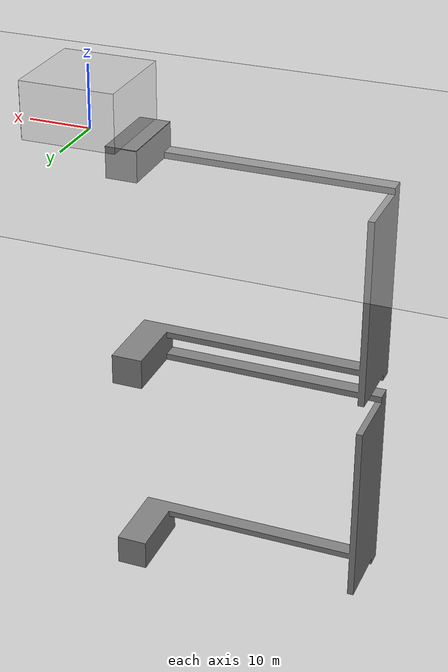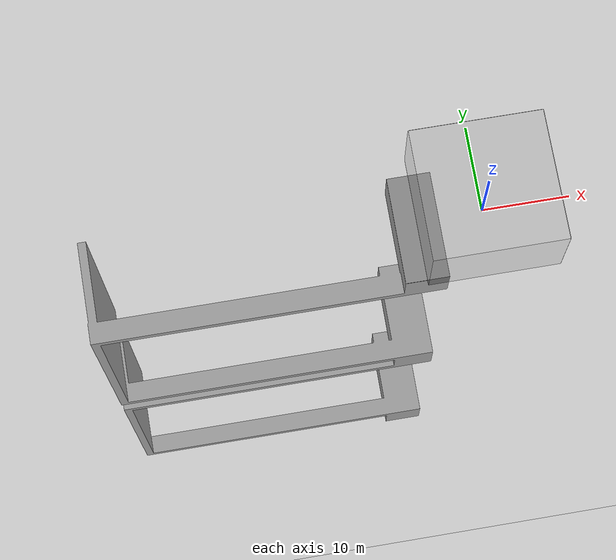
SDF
<?xml version="1.0" ?>
<sdf version="1.8">
  <world name="default">
    <!-- Basic settings and plugins -->
        <physics name="1ms" type="ignored">
            <max_step_size>0.001</max_step_size>
            <real_time_factor>1.0</real_time_factor>

        </physics>
        <plugin
        filename="gz-sim-buoyancy-system"
        name="gz::sim::systems::Buoyancy">
        <uniform_fluid_density>0</uniform_fluid_density>
        </plugin>

        <plugin
            filename="gz-sim-physics-system"
            name="gz::sim::systems::Physics">
        </plugin>
        <plugin
            filename="gz-sim-user-commands-system"
            name="gz::sim::systems::UserCommands">
        </plugin>
        <plugin
            filename="gz-sim-scene-broadcaster-system"
            name="gz::sim::systems::SceneBroadcaster">
        </plugin>
        <plugin
            filename="gz-sim-imu-system"
            name="gz::sim::systems::Imu">
        </plugin>
        <plugin
            filename="gz-sim-sensors-system"
            name="gz::sim::systems::Sensors">
            <render_engine>ogre2</render_engine>
        </plugin>

        <plugin
            filename="gz-sim-buoyancy-system"
            name="gz::sim::systems::Buoyancy">
            <uniform_fluid_density>0</uniform_fluid_density>
        </plugin>
          <plugin
            filename="gz-sim-particle-emitter-system"
            name="gz::sim::systems::ParticleEmitter">
          </plugin>

        <plugin
            filename="gz-sim-contact-system"
            name="gz::sim::systems::Contact">
        </plugin>

        <gui fullscreen="0">

          <!-- 3D scene -->
          <plugin filename="MinimalScene" name="3D View">
            <gz-gui>
              <title>3D View</title>
              <property type="bool" key="showTitleBar">false</property>
              <property type="string" key="state">docked</property>
            </gz-gui>

            <engine>ogre2</engine>
            <scene>scene</scene>
            <ambient_light>0.4 0.4 0.4</ambient_light>
            <background_color>0.8 0.8 0.8</background_color>
            <camera_pose>-6 0 6 0 0.5 0</camera_pose>
            <camera_clip>
              <near>0.25</near>
              <far>25000</far>
            </camera_clip>
          </plugin>

          <!-- Plugins that add functionality to the scene -->
          <plugin filename="EntityContextMenuPlugin" name="Entity context menu">
            <gz-gui>
              <property key="state" type="string">floating</property>
              <property key="width" type="double">5</property>
              <property key="height" type="double">5</property>
              <property key="showTitleBar" type="bool">false</property>
            </gz-gui>
          </plugin>
          <plugin filename="GzSceneManager" name="Scene Manager">
            <gz-gui>
              <property key="resizable" type="bool">false</property>
              <property key="width" type="double">5</property>
              <property key="height" type="double">5</property>
              <property key="state" type="string">floating</property>
              <property key="showTitleBar" type="bool">false</property>
            </gz-gui>
          </plugin>
          <plugin filename="InteractiveViewControl" name="Interactive view control">
            <gz-gui>
              <property key="resizable" type="bool">false</property>
              <property key="width" type="double">5</property>
              <property key="height" type="double">5</property>
              <property key="state" type="string">floating</property>
              <property key="showTitleBar" type="bool">false</property>
            </gz-gui>
          </plugin>
          <plugin filename="CameraTracking" name="Camera Tracking">
            <gz-gui>
              <property key="resizable" type="bool">false</property>
              <property key="width" type="double">5</property>
              <property key="height" type="double">5</property>
              <property key="state" type="string">floating</property>
              <property key="showTitleBar" type="bool">false</property>
            </gz-gui>
          </plugin>
          <plugin filename="MarkerManager" name="Marker manager">
            <gz-gui>
              <property key="resizable" type="bool">false</property>
              <property key="width" type="double">5</property>
              <property key="height" type="double">5</property>
              <property key="state" type="string">floating</property>
              <property key="showTitleBar" type="bool">false</property>
            </gz-gui>
          </plugin>
          <plugin filename="SelectEntities" name="Select Entities">
            <gz-gui>
              <anchors target="Select entities">
                <line own="right" target="right"/>
                <line own="top" target="top"/>
              </anchors>
              <property key="resizable" type="bool">false</property>
              <property key="width" type="double">5</property>
              <property key="height" type="double">5</property>
              <property key="state" type="string">floating</property>
              <property key="showTitleBar" type="bool">false</property>
            </gz-gui>
          </plugin>
          <plugin filename="VisualizationCapabilities" name="Visualization Capabilities">
            <gz-gui>
              <property key="resizable" type="bool">false</property>
              <property key="width" type="double">5</property>
              <property key="height" type="double">5</property>
              <property key="state" type="string">floating</property>
              <property key="showTitleBar" type="bool">false</property>
            </gz-gui>
          </plugin>

          <plugin filename="Spawn" name="Spawn Entities">
            <gz-gui>
              <anchors target="Select entities">
                <line own="right" target="right"/>
                <line own="top" target="top"/>
              </anchors>
              <property key="resizable" type="bool">false</property>
              <property key="width" type="double">5</property>
              <property key="height" type="double">5</property>
              <property key="state" type="string">floating</property>
              <property key="showTitleBar" type="bool">false</property>
            </gz-gui>
          </plugin>

          <!-- World control -->
          <plugin filename="WorldControl" name="World control">
            <gz-gui>
              <title>World control</title>
              <property type="bool" key="showTitleBar">false</property>
              <property type="bool" key="resizable">false</property>
              <property type="double" key="height">72</property>
              <property type="double" key="width">121</property>
              <property type="double" key="z">1</property>

              <property type="string" key="state">floating</property>
              <anchors target="3D View">
                <line own="left" target="left"/>
                <line own="bottom" target="bottom"/>
              </anchors>
            </gz-gui>

            <play_pause>true</play_pause>
            <step>true</step>
            <start_paused>true</start_paused>
            <use_event>true</use_event>

          </plugin>

          <!-- World statistics -->
          <plugin filename="WorldStats" name="World stats">
            <gz-gui>
              <title>World stats</title>
              <property type="bool" key="showTitleBar">false</property>
              <property type="bool" key="resizable">false</property>
              <property type="double" key="height">110</property>
              <property type="double" key="width">290</property>
              <property type="double" key="z">1</property>

              <property type="string" key="state">floating</property>
              <anchors target="3D View">
                <line own="right" target="right"/>
                <line own="bottom" target="bottom"/>
              </anchors>
            </gz-gui>

            <sim_time>true</sim_time>
            <real_time>true</real_time>
            <real_time_factor>true</real_time_factor>
            <iterations>true</iterations>
          </plugin>

          <!-- Insert simple shapes -->
          <plugin filename="Shapes" name="Shapes">
            <gz-gui>
              <property key="resizable" type="bool">false</property>
              <property key="x" type="double">0</property>
              <property key="y" type="double">0</property>
              <property key="width" type="double">250</property>
              <property key="height" type="double">50</property>
              <property key="state" type="string">floating</property>
              <property key="showTitleBar" type="bool">false</property>
              <property key="cardBackground" type="string">#666666</property>
            </gz-gui>
          </plugin>

          <!-- Insert lights -->
          <plugin filename="Lights" name="Lights">
            <gz-gui>
              <property key="resizable" type="bool">false</property>
              <property key="x" type="double">250</property>
              <property key="y" type="double">0</property>
              <property key="width" type="double">150</property>
              <property key="height" type="double">50</property>
              <property key="state" type="string">floating</property>
              <property key="showTitleBar" type="bool">false</property>
              <property key="cardBackground" type="string">#666666</property>
            </gz-gui>
          </plugin>

          <!-- Translate / rotate -->
          <plugin filename="TransformControl" name="Transform control">
            <gz-gui>
              <property key="resizable" type="bool">false</property>
              <property key="x" type="double">0</property>
              <property key="y" type="double">50</property>
              <property key="width" type="double">250</property>
              <property key="height" type="double">50</property>
              <property key="state" type="string">floating</property>
              <property key="showTitleBar" type="bool">false</property>
              <property key="cardBackground" type="string">#777777</property>
            </gz-gui>
          </plugin>

          <!-- Inspector -->
          <plugin filename="ComponentInspector" name="Component inspector">
            <gz-gui>
              <property type="string" key="state">docked_collapsed</property>
            </gz-gui>
          </plugin>

          <!-- View angle -->
          <plugin filename="ViewAngle" name="View angle">
            <gz-gui>
              <property type="string" key="state">docked_collapsed</property>
            </gz-gui>
          </plugin>

            <!-- KeyPublisher plugin-->
            <plugin filename="KeyPublisher" name="Key Publisher"/>

        </gui>

        <!-- Lighting -->
        <light type="directional" name="sun">
            <cast_shadows>true</cast_shadows>
            <pose>0 0 10 0 0 0</pose>
            <diffuse>0.8 0.8 0.8 1</diffuse>
            <specular>0.2 0.2 0.2 1</specular>
            <attenuation>
                <range>1000</range>
                <constant>0.9</constant>
                <linear>0.01</linear>
                <quadratic>0.001</quadratic>
            </attenuation>
            <direction>-0.5 0.1 -0.9</direction>
        </light>

        <!-- Ground Plane -->
        <model name="ground_plane">
            <static>true</static>
            <link name="link">
                <collision name="collision">
                <geometry>
                    <plane>
                    <normal>0 0 1</normal>
                    </plane>
                </geometry>
                </collision>
                <visual name="visual">
                <geometry>
                    <plane>
                    <normal>0 0 1</normal>
                    <size>100 100</size>
                    </plane>
                </geometry>
                <material>
                    <ambient>0.8 0.8 0.8 1</ambient>
                    <diffuse>0.8 0.8 0.8 1</diffuse>
                    <specular>0.8 0.8 0.8 1</specular>
                </material>
                </visual>
            </link>
        </model>

        <!--WORLD BOUNDARIES-->

        <model name='boundary1'>
            <pose>0 7.5 1.5 0 0 0</pose> <!-- Top wall -->
            <static>true</static>
            <link name='body'>
                <visual name='body_visual'>
                <geometry>
                    <box>
                    <size>15 0.1 15</size> <!-- No change in size -->
                    </box>
                </geometry>
                <material>
                    <ambient>1 0.9 0.9 0.2</ambient>
                    <diffuse>0.5 0.5 0.5 0.2</diffuse>
                </material>
                </visual>
                <collision name='body_collision'>
                <geometry>
                    <box>
                    <size>15 0.1 4</size> <!-- Ensure the size matches the visual -->
                    </box>
                </geometry>
                </collision>
            </link>
            </model>
        <model name='boundary2'>
            <pose>0 -7.5 1.5 0 0 0</pose> <!-- Bottom wall -->
            <static>true</static>
            <link name='body'>
                <visual name='body_visual'>
                <geometry>
                    <box>
                    <size>15 0.1 15</size> <!-- No change in size -->
                    </box>
                </geometry>
                <material>
                    <ambient>1 0.9 0.9 0.2</ambient>
                    <diffuse>0.5 0.5 0.5 0.2</diffuse>
                </material>
                </visual>
                <collision name='body_collision'>
                <geometry>
                    <box>
                    <size>15 0.1 4</size> <!-- Ensure the size matches the visual -->
                    </box>
                </geometry>
                </collision>
            </link>
        </model>
        <model name='boundary3'>
            <pose>7.5 0 1.5 0 0 0</pose> <!-- Right wall (move further right) -->
            <static>true</static>
            <link name='body'>
                <visual name='body_visual'>
                <geometry>
                    <box>
                    <size>0.1 15 15</size>
                    </box>
                </geometry>
                <material>
                    <ambient>1 0.9 0.9 0.2</ambient>
                    <diffuse>0.5 0.5 0.5 0.2</diffuse>
                </material>
                </visual>
                <collision name='body_collision'>
                <geometry>
                    <box>
                    <size>0.1 10 4</size>
                    </box>
                </geometry>
                </collision>
            </link>
            </model>
        <model name='boundary4'>
            <pose>-7.5 0 1.5 0 0 0</pose> <!-- Left wall (move further left) -->
            <static>true</static>
            <link name='body'>
                <visual name='body_visual'>
                <geometry>
                    <box>
                    <size>0.1 15 15</size>
                    </box>
                </geometry>
                <material>
                    <ambient>1 0.9 0.9 0.2</ambient>
                    <diffuse>0.5 0.5 0.5 0.2</diffuse>
                </material>
                </visual>
                <collision name='body_collision'>
                <geometry>
                    <box>
                    <size>0.1 10 4</size>
                    </box>
                </geometry>
                </collision>
            </link>
        </model>

        <model name='ceiling'>
            <pose>0 0 9 0 0 0</pose> <!-- Position the ceiling above the walls -->
            <static>true</static>
            <link name='body'>
                <visual name='body_visual'>
                <geometry>
                    <box>
                    <size>15 15 0.1</size> <!-- Dimensions of the ceiling -->
                    </box>
                </geometry>
                <material>
                    <ambient>1 0.9 0.9 0.2</ambient>
                    <diffuse>0.5 0.5 0.5 0.2</diffuse>
                </material>
                </visual>
                <collision name='body_collision'>
                <geometry>
                    <box>
                    <size>15 15 0.1</size> <!-- Ensure collision matches the visual -->
                    </box>
                </geometry>
                </collision>
            </link>
        </model>

        <!--WORLD OBJECTS-->

        <!-- =========================
        Mock Animal Pen (Imported STL file)
        ========================= -->
        <model name='mockPen'>
          <pose>-5 -7 0 0 0 0</pose>
          <!-- Set whether the model is static. Static models are
          not affected by gravity or other physical effects-->
          <static>true</static>
          <link name='mockPen'>
            <visual name='visual'>
              <geometry>
                    <mesh>
                        <scale>0.5 0.5 0.5</scale>
                        <uri>model://models/mock_animal_pen/mock_animal_pen.STL</uri>
                    </mesh>
              </geometry>
                <material>
                    <ambient>0 1 0 1</ambient>
                    <diffuse>0.5 0.5 0.5 1</diffuse>
                </material>
            </visual>

            <collision name='collision'>
               <geometry>
                    <mesh>
                        <scale>0.5 0.5 0.5</scale>
                        <uri>model://models/mock_animal_pen/mock_animal_pen.STL</uri>
                    </mesh>
               </geometry>
            </collision>
          </link>
        </model>

        <!-- =========================
        Other Objects
        ========================= -->

  </world>
</sdf>
